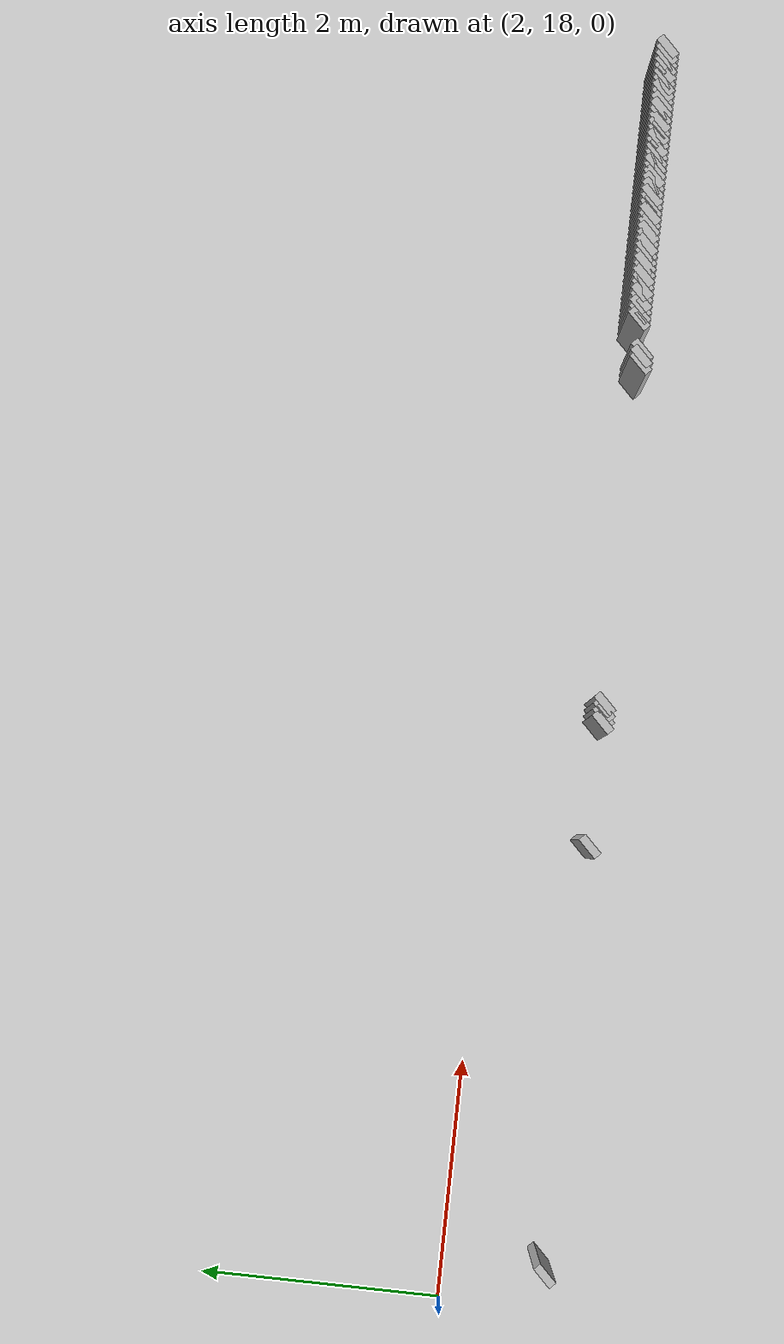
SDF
<sdf version="1.5">
 <world name="default">
  <include><uri>model://ground_plane</uri></include>
  <include><uri>model://sun</uri></include>
  <model name="grey_wall_108">
   <static>1</static>
   <link name="link">
    <pose>10.15 17.25  1.4 0 0 -0.7853981633974128</pose>
    <collision name="collision">
     <geometry><box><size>0.07071067811865325 .2  2.8</size></box></geometry>
    </collision>
    <visual name="visual">
     <cast_shadows>0</cast_shadows>
     <geometry><box><size>0.07071067811865325 .2  2.8</size></box></geometry>
    </visual>
   </link>
  </model>
  <model name="grey_wall_109">
   <static>1</static>
   <link name="link">
    <pose>10.200000000000001 17.25  1.4 0 0 -0.7853981633974128</pose>
    <collision name="collision">
     <geometry><box><size>0.07071067811865325 .2  2.8</size></box></geometry>
    </collision>
    <visual name="visual">
     <cast_shadows>0</cast_shadows>
     <geometry><box><size>0.07071067811865325 .2  2.8</size></box></geometry>
    </visual>
   </link>
  </model>
  <model name="grey_wall_110">
   <static>1</static>
   <link name="link">
    <pose>10.25 17.25  1.4 0 0 -0.7853981633974128</pose>
    <collision name="collision">
     <geometry><box><size>0.07071067811865325 .2  2.8</size></box></geometry>
    </collision>
    <visual name="visual">
     <cast_shadows>0</cast_shadows>
     <geometry><box><size>0.07071067811865325 .2  2.8</size></box></geometry>
    </visual>
   </link>
  </model>
  <model name="grey_wall_111">
   <static>1</static>
   <link name="link">
    <pose>10.3 17.25  1.4 0 0 -0.7853981633974128</pose>
    <collision name="collision">
     <geometry><box><size>0.07071067811865325 .2  2.8</size></box></geometry>
    </collision>
    <visual name="visual">
     <cast_shadows>0</cast_shadows>
     <geometry><box><size>0.07071067811865325 .2  2.8</size></box></geometry>
    </visual>
   </link>
  </model>
  <model name="grey_wall_112">
   <static>1</static>
   <link name="link">
    <pose>10.350000000000001 17.25  1.4 0 0 -0.7853981633974128</pose>
    <collision name="collision">
     <geometry><box><size>0.07071067811865325 .2  2.8</size></box></geometry>
    </collision>
    <visual name="visual">
     <cast_shadows>0</cast_shadows>
     <geometry><box><size>0.07071067811865325 .2  2.8</size></box></geometry>
    </visual>
   </link>
  </model>
  <model name="grey_wall_113">
   <static>1</static>
   <link name="link">
    <pose>10.4 17.25  1.4 0 0 -0.7853981633974128</pose>
    <collision name="collision">
     <geometry><box><size>0.07071067811865325 .2  2.8</size></box></geometry>
    </collision>
    <visual name="visual">
     <cast_shadows>0</cast_shadows>
     <geometry><box><size>0.07071067811865325 .2  2.8</size></box></geometry>
    </visual>
   </link>
  </model>
  <model name="grey_wall_114">
   <static>1</static>
   <link name="link">
    <pose>10.450000000000001 17.25  1.4 0 0 -0.7853981633974128</pose>
    <collision name="collision">
     <geometry><box><size>0.07071067811865325 .2  2.8</size></box></geometry>
    </collision>
    <visual name="visual">
     <cast_shadows>0</cast_shadows>
     <geometry><box><size>0.07071067811865325 .2  2.8</size></box></geometry>
    </visual>
   </link>
  </model>
  <model name="grey_wall_115">
   <static>1</static>
   <link name="link">
    <pose>10.5 17.25  1.4 0 0 -0.7853981633974128</pose>
    <collision name="collision">
     <geometry><box><size>0.07071067811865325 .2  2.8</size></box></geometry>
    </collision>
    <visual name="visual">
     <cast_shadows>0</cast_shadows>
     <geometry><box><size>0.07071067811865325 .2  2.8</size></box></geometry>
    </visual>
   </link>
  </model>
  <model name="grey_wall_116">
   <static>1</static>
   <link name="link">
    <pose>10.55 17.25  1.4 0 0 -0.7853981633974128</pose>
    <collision name="collision">
     <geometry><box><size>0.07071067811865325 .2  2.8</size></box></geometry>
    </collision>
    <visual name="visual">
     <cast_shadows>0</cast_shadows>
     <geometry><box><size>0.07071067811865325 .2  2.8</size></box></geometry>
    </visual>
   </link>
  </model>
  <model name="grey_wall_117">
   <static>1</static>
   <link name="link">
    <pose>10.600000000000001 17.25  1.4 0 0 -0.7853981633974128</pose>
    <collision name="collision">
     <geometry><box><size>0.07071067811865325 .2  2.8</size></box></geometry>
    </collision>
    <visual name="visual">
     <cast_shadows>0</cast_shadows>
     <geometry><box><size>0.07071067811865325 .2  2.8</size></box></geometry>
    </visual>
   </link>
  </model>
  <model name="grey_wall_118">
   <static>1</static>
   <link name="link">
    <pose>10.65 17.25  1.4 0 0 -0.7853981633974128</pose>
    <collision name="collision">
     <geometry><box><size>0.07071067811865325 .2  2.8</size></box></geometry>
    </collision>
    <visual name="visual">
     <cast_shadows>0</cast_shadows>
     <geometry><box><size>0.07071067811865325 .2  2.8</size></box></geometry>
    </visual>
   </link>
  </model>
  <model name="grey_wall_119">
   <static>1</static>
   <link name="link">
    <pose>10.700000000000001 17.25  1.4 0 0 -0.7853981633974128</pose>
    <collision name="collision">
     <geometry><box><size>0.07071067811865325 .2  2.8</size></box></geometry>
    </collision>
    <visual name="visual">
     <cast_shadows>0</cast_shadows>
     <geometry><box><size>0.07071067811865325 .2  2.8</size></box></geometry>
    </visual>
   </link>
  </model>
  <model name="grey_wall_120">
   <static>1</static>
   <link name="link">
    <pose>10.75 17.25  1.4 0 0 -0.7853981633974128</pose>
    <collision name="collision">
     <geometry><box><size>0.07071067811865325 .2  2.8</size></box></geometry>
    </collision>
    <visual name="visual">
     <cast_shadows>0</cast_shadows>
     <geometry><box><size>0.07071067811865325 .2  2.8</size></box></geometry>
    </visual>
   </link>
  </model>
  <model name="grey_wall_121">
   <static>1</static>
   <link name="link">
    <pose>10.8 17.25  1.4 0 0 -0.7853981633974128</pose>
    <collision name="collision">
     <geometry><box><size>0.07071067811865325 .2  2.8</size></box></geometry>
    </collision>
    <visual name="visual">
     <cast_shadows>0</cast_shadows>
     <geometry><box><size>0.07071067811865325 .2  2.8</size></box></geometry>
    </visual>
   </link>
  </model>
  <model name="grey_wall_122">
   <static>1</static>
   <link name="link">
    <pose>10.850000000000001 17.25  1.4 0 0 -0.7853981633974128</pose>
    <collision name="collision">
     <geometry><box><size>0.07071067811865325 .2  2.8</size></box></geometry>
    </collision>
    <visual name="visual">
     <cast_shadows>0</cast_shadows>
     <geometry><box><size>0.07071067811865325 .2  2.8</size></box></geometry>
    </visual>
   </link>
  </model>
  <model name="grey_wall_123">
   <static>1</static>
   <link name="link">
    <pose>10.9 17.25  1.4 0 0 -0.7853981633974128</pose>
    <collision name="collision">
     <geometry><box><size>0.07071067811865325 .2  2.8</size></box></geometry>
    </collision>
    <visual name="visual">
     <cast_shadows>0</cast_shadows>
     <geometry><box><size>0.07071067811865325 .2  2.8</size></box></geometry>
    </visual>
   </link>
  </model>
  <model name="grey_wall_124">
   <static>1</static>
   <link name="link">
    <pose>10.950000000000001 17.25  1.4 0 0 -0.7853981633974128</pose>
    <collision name="collision">
     <geometry><box><size>0.07071067811865325 .2  2.8</size></box></geometry>
    </collision>
    <visual name="visual">
     <cast_shadows>0</cast_shadows>
     <geometry><box><size>0.07071067811865325 .2  2.8</size></box></geometry>
    </visual>
   </link>
  </model>
  <model name="grey_wall_125">
   <static>1</static>
   <link name="link">
    <pose>11.0 17.25  1.4 0 0 -0.7853981633974128</pose>
    <collision name="collision">
     <geometry><box><size>0.07071067811865325 .2  2.8</size></box></geometry>
    </collision>
    <visual name="visual">
     <cast_shadows>0</cast_shadows>
     <geometry><box><size>0.07071067811865325 .2  2.8</size></box></geometry>
    </visual>
   </link>
  </model>
  <model name="grey_wall_126">
   <static>1</static>
   <link name="link">
    <pose>11.05 17.25  1.4 0 0 -0.7853981633974128</pose>
    <collision name="collision">
     <geometry><box><size>0.07071067811865325 .2  2.8</size></box></geometry>
    </collision>
    <visual name="visual">
     <cast_shadows>0</cast_shadows>
     <geometry><box><size>0.07071067811865325 .2  2.8</size></box></geometry>
    </visual>
   </link>
  </model>
  <model name="grey_wall_127">
   <static>1</static>
   <link name="link">
    <pose>11.100000000000001 17.25  1.4 0 0 -0.7853981633974128</pose>
    <collision name="collision">
     <geometry><box><size>0.07071067811865325 .2  2.8</size></box></geometry>
    </collision>
    <visual name="visual">
     <cast_shadows>0</cast_shadows>
     <geometry><box><size>0.07071067811865325 .2  2.8</size></box></geometry>
    </visual>
   </link>
  </model>
  <model name="grey_wall_128">
   <static>1</static>
   <link name="link">
    <pose>11.15 17.25  1.4 0 0 -0.7853981633974128</pose>
    <collision name="collision">
     <geometry><box><size>0.07071067811865325 .2  2.8</size></box></geometry>
    </collision>
    <visual name="visual">
     <cast_shadows>0</cast_shadows>
     <geometry><box><size>0.07071067811865325 .2  2.8</size></box></geometry>
    </visual>
   </link>
  </model>
  <model name="grey_wall_129">
   <static>1</static>
   <link name="link">
    <pose>11.200000000000001 17.25  1.4 0 0 -0.7853981633974128</pose>
    <collision name="collision">
     <geometry><box><size>0.07071067811865325 .2  2.8</size></box></geometry>
    </collision>
    <visual name="visual">
     <cast_shadows>0</cast_shadows>
     <geometry><box><size>0.07071067811865325 .2  2.8</size></box></geometry>
    </visual>
   </link>
  </model>
  <model name="grey_wall_130">
   <static>1</static>
   <link name="link">
    <pose>11.25 17.25  1.4 0 0 -0.7853981633974128</pose>
    <collision name="collision">
     <geometry><box><size>0.07071067811865325 .2  2.8</size></box></geometry>
    </collision>
    <visual name="visual">
     <cast_shadows>0</cast_shadows>
     <geometry><box><size>0.07071067811865325 .2  2.8</size></box></geometry>
    </visual>
   </link>
  </model>
  <model name="grey_wall_131">
   <static>1</static>
   <link name="link">
    <pose>11.3 17.25  1.4 0 0 -0.7853981633974128</pose>
    <collision name="collision">
     <geometry><box><size>0.07071067811865325 .2  2.8</size></box></geometry>
    </collision>
    <visual name="visual">
     <cast_shadows>0</cast_shadows>
     <geometry><box><size>0.07071067811865325 .2  2.8</size></box></geometry>
    </visual>
   </link>
  </model>
  <model name="grey_wall_132">
   <static>1</static>
   <link name="link">
    <pose>11.350000000000001 17.25  1.4 0 0 -0.7853981633974128</pose>
    <collision name="collision">
     <geometry><box><size>0.07071067811865325 .2  2.8</size></box></geometry>
    </collision>
    <visual name="visual">
     <cast_shadows>0</cast_shadows>
     <geometry><box><size>0.07071067811865325 .2  2.8</size></box></geometry>
    </visual>
   </link>
  </model>
  <model name="grey_wall_133">
   <static>1</static>
   <link name="link">
    <pose>11.4 17.25  1.4 0 0 -0.7853981633974128</pose>
    <collision name="collision">
     <geometry><box><size>0.07071067811865325 .2  2.8</size></box></geometry>
    </collision>
    <visual name="visual">
     <cast_shadows>0</cast_shadows>
     <geometry><box><size>0.07071067811865325 .2  2.8</size></box></geometry>
    </visual>
   </link>
  </model>
  <model name="grey_wall_134">
   <static>1</static>
   <link name="link">
    <pose>11.450000000000001 17.25  1.4 0 0 -0.7853981633974128</pose>
    <collision name="collision">
     <geometry><box><size>0.07071067811865325 .2  2.8</size></box></geometry>
    </collision>
    <visual name="visual">
     <cast_shadows>0</cast_shadows>
     <geometry><box><size>0.07071067811865325 .2  2.8</size></box></geometry>
    </visual>
   </link>
  </model>
  <model name="grey_wall_135">
   <static>1</static>
   <link name="link">
    <pose>11.5 17.25  1.4 0 0 -0.7853981633974128</pose>
    <collision name="collision">
     <geometry><box><size>0.07071067811865325 .2  2.8</size></box></geometry>
    </collision>
    <visual name="visual">
     <cast_shadows>0</cast_shadows>
     <geometry><box><size>0.07071067811865325 .2  2.8</size></box></geometry>
    </visual>
   </link>
  </model>
  <model name="grey_wall_136">
   <static>1</static>
   <link name="link">
    <pose>11.55 17.25  1.4 0 0 -0.7853981633974128</pose>
    <collision name="collision">
     <geometry><box><size>0.07071067811865325 .2  2.8</size></box></geometry>
    </collision>
    <visual name="visual">
     <cast_shadows>0</cast_shadows>
     <geometry><box><size>0.07071067811865325 .2  2.8</size></box></geometry>
    </visual>
   </link>
  </model>
  <model name="grey_wall_137">
   <static>1</static>
   <link name="link">
    <pose>11.600000000000001 17.25  1.4 0 0 -0.7853981633974128</pose>
    <collision name="collision">
     <geometry><box><size>0.07071067811865325 .2  2.8</size></box></geometry>
    </collision>
    <visual name="visual">
     <cast_shadows>0</cast_shadows>
     <geometry><box><size>0.07071067811865325 .2  2.8</size></box></geometry>
    </visual>
   </link>
  </model>
  <model name="grey_wall_138">
   <static>1</static>
   <link name="link">
    <pose>11.65 17.25  1.4 0 0 -0.7853981633974128</pose>
    <collision name="collision">
     <geometry><box><size>0.07071067811865325 .2  2.8</size></box></geometry>
    </collision>
    <visual name="visual">
     <cast_shadows>0</cast_shadows>
     <geometry><box><size>0.07071067811865325 .2  2.8</size></box></geometry>
    </visual>
   </link>
  </model>
  <model name="grey_wall_139">
   <static>1</static>
   <link name="link">
    <pose>11.700000000000001 17.25  1.4 0 0 -0.7853981633974128</pose>
    <collision name="collision">
     <geometry><box><size>0.07071067811865325 .2  2.8</size></box></geometry>
    </collision>
    <visual name="visual">
     <cast_shadows>0</cast_shadows>
     <geometry><box><size>0.07071067811865325 .2  2.8</size></box></geometry>
    </visual>
   </link>
  </model>
  <model name="grey_wall_140">
   <static>1</static>
   <link name="link">
    <pose>11.75 17.25  1.4 0 0 -0.7853981633974128</pose>
    <collision name="collision">
     <geometry><box><size>0.07071067811865325 .2  2.8</size></box></geometry>
    </collision>
    <visual name="visual">
     <cast_shadows>0</cast_shadows>
     <geometry><box><size>0.07071067811865325 .2  2.8</size></box></geometry>
    </visual>
   </link>
  </model>
  <model name="grey_wall_141">
   <static>1</static>
   <link name="link">
    <pose>11.8 17.25  1.4 0 0 -0.7853981633974128</pose>
    <collision name="collision">
     <geometry><box><size>0.07071067811865325 .2  2.8</size></box></geometry>
    </collision>
    <visual name="visual">
     <cast_shadows>0</cast_shadows>
     <geometry><box><size>0.07071067811865325 .2  2.8</size></box></geometry>
    </visual>
   </link>
  </model>
  <model name="grey_wall_142">
   <static>1</static>
   <link name="link">
    <pose>11.850000000000001 17.25  1.4 0 0 -0.7853981633974128</pose>
    <collision name="collision">
     <geometry><box><size>0.07071067811865325 .2  2.8</size></box></geometry>
    </collision>
    <visual name="visual">
     <cast_shadows>0</cast_shadows>
     <geometry><box><size>0.07071067811865325 .2  2.8</size></box></geometry>
    </visual>
   </link>
  </model>
  <model name="grey_wall_143">
   <static>1</static>
   <link name="link">
    <pose>11.9 17.25  1.4 0 0 -0.7853981633974128</pose>
    <collision name="collision">
     <geometry><box><size>0.07071067811865325 .2  2.8</size></box></geometry>
    </collision>
    <visual name="visual">
     <cast_shadows>0</cast_shadows>
     <geometry><box><size>0.07071067811865325 .2  2.8</size></box></geometry>
    </visual>
   </link>
  </model>
  <model name="grey_wall_144">
   <static>1</static>
   <link name="link">
    <pose>11.950000000000001 17.25  1.4 0 0 -0.7853981633974128</pose>
    <collision name="collision">
     <geometry><box><size>0.07071067811865325 .2  2.8</size></box></geometry>
    </collision>
    <visual name="visual">
     <cast_shadows>0</cast_shadows>
     <geometry><box><size>0.07071067811865325 .2  2.8</size></box></geometry>
    </visual>
   </link>
  </model>
  <model name="grey_wall_145">
   <static>1</static>
   <link name="link">
    <pose>12.0 17.25  1.4 0 0 -0.7853981633974128</pose>
    <collision name="collision">
     <geometry><box><size>0.07071067811865325 .2  2.8</size></box></geometry>
    </collision>
    <visual name="visual">
     <cast_shadows>0</cast_shadows>
     <geometry><box><size>0.07071067811865325 .2  2.8</size></box></geometry>
    </visual>
   </link>
  </model>
  <model name="grey_wall_146">
   <static>1</static>
   <link name="link">
    <pose>12.05 17.25  1.4 0 0 -0.7853981633974128</pose>
    <collision name="collision">
     <geometry><box><size>0.07071067811865325 .2  2.8</size></box></geometry>
    </collision>
    <visual name="visual">
     <cast_shadows>0</cast_shadows>
     <geometry><box><size>0.07071067811865325 .2  2.8</size></box></geometry>
    </visual>
   </link>
  </model>
  <model name="grey_wall_147">
   <static>1</static>
   <link name="link">
    <pose>12.100000000000001 17.25  1.4 0 0 -0.7853981633974128</pose>
    <collision name="collision">
     <geometry><box><size>0.07071067811865325 .2  2.8</size></box></geometry>
    </collision>
    <visual name="visual">
     <cast_shadows>0</cast_shadows>
     <geometry><box><size>0.07071067811865325 .2  2.8</size></box></geometry>
    </visual>
   </link>
  </model>
  <model name="grey_wall_148">
   <static>1</static>
   <link name="link">
    <pose>12.15 17.25  1.4 0 0 -0.7853981633974128</pose>
    <collision name="collision">
     <geometry><box><size>0.07071067811865325 .2  2.8</size></box></geometry>
    </collision>
    <visual name="visual">
     <cast_shadows>0</cast_shadows>
     <geometry><box><size>0.07071067811865325 .2  2.8</size></box></geometry>
    </visual>
   </link>
  </model>
  <model name="grey_wall_149">
   <static>1</static>
   <link name="link">
    <pose>12.200000000000001 17.25  1.4 0 0 -0.7853981633974128</pose>
    <collision name="collision">
     <geometry><box><size>0.07071067811865325 .2  2.8</size></box></geometry>
    </collision>
    <visual name="visual">
     <cast_shadows>0</cast_shadows>
     <geometry><box><size>0.07071067811865325 .2  2.8</size></box></geometry>
    </visual>
   </link>
  </model>
  <model name="grey_wall_150">
   <static>1</static>
   <link name="link">
    <pose>12.25 17.25  1.4 0 0 -0.7853981633974128</pose>
    <collision name="collision">
     <geometry><box><size>0.07071067811865325 .2  2.8</size></box></geometry>
    </collision>
    <visual name="visual">
     <cast_shadows>0</cast_shadows>
     <geometry><box><size>0.07071067811865325 .2  2.8</size></box></geometry>
    </visual>
   </link>
  </model>
  <model name="grey_wall_151">
   <static>1</static>
   <link name="link">
    <pose>12.3 17.25  1.4 0 0 -0.7853981633974128</pose>
    <collision name="collision">
     <geometry><box><size>0.07071067811865325 .2  2.8</size></box></geometry>
    </collision>
    <visual name="visual">
     <cast_shadows>0</cast_shadows>
     <geometry><box><size>0.07071067811865325 .2  2.8</size></box></geometry>
    </visual>
   </link>
  </model>
  <model name="grey_wall_152">
   <static>1</static>
   <link name="link">
    <pose>12.350000000000001 17.25  1.4 0 0 -0.7853981633974128</pose>
    <collision name="collision">
     <geometry><box><size>0.07071067811865325 .2  2.8</size></box></geometry>
    </collision>
    <visual name="visual">
     <cast_shadows>0</cast_shadows>
     <geometry><box><size>0.07071067811865325 .2  2.8</size></box></geometry>
    </visual>
   </link>
  </model>
  <model name="grey_wall_153">
   <static>1</static>
   <link name="link">
    <pose>2.45 17.2  1.4 0 0 -0.7853981633974216</pose>
    <collision name="collision">
     <geometry><box><size>0.07071067811865261 .2  2.8</size></box></geometry>
    </collision>
    <visual name="visual">
     <cast_shadows>0</cast_shadows>
     <geometry><box><size>0.07071067811865261 .2  2.8</size></box></geometry>
    </visual>
   </link>
  </model>
  <model name="grey_wall_154">
   <static>1</static>
   <link name="link">
    <pose>5.9 17.2  1.4 0 0 -0.7853981633974128</pose>
    <collision name="collision">
     <geometry><box><size>0.07071067811865325 .2  2.8</size></box></geometry>
    </collision>
    <visual name="visual">
     <cast_shadows>0</cast_shadows>
     <geometry><box><size>0.07071067811865325 .2  2.8</size></box></geometry>
    </visual>
   </link>
  </model>
  <model name="grey_wall_155">
   <static>1</static>
   <link name="link">
    <pose>6.9 17.2  1.4 0 0 -0.7853981633974128</pose>
    <collision name="collision">
     <geometry><box><size>0.07071067811865325 .2  2.8</size></box></geometry>
    </collision>
    <visual name="visual">
     <cast_shadows>0</cast_shadows>
     <geometry><box><size>0.07071067811865325 .2  2.8</size></box></geometry>
    </visual>
   </link>
  </model>
  <model name="grey_wall_156">
   <static>1</static>
   <link name="link">
    <pose>6.95 17.2  1.4 0 0 -0.7853981633974128</pose>
    <collision name="collision">
     <geometry><box><size>0.07071067811865325 .2  2.8</size></box></geometry>
    </collision>
    <visual name="visual">
     <cast_shadows>0</cast_shadows>
     <geometry><box><size>0.07071067811865325 .2  2.8</size></box></geometry>
    </visual>
   </link>
  </model>
  <model name="grey_wall_157">
   <static>1</static>
   <link name="link">
    <pose>7.0 17.2  1.4 0 0 -0.7853981633974128</pose>
    <collision name="collision">
     <geometry><box><size>0.07071067811865325 .2  2.8</size></box></geometry>
    </collision>
    <visual name="visual">
     <cast_shadows>0</cast_shadows>
     <geometry><box><size>0.07071067811865325 .2  2.8</size></box></geometry>
    </visual>
   </link>
  </model>
  <model name="grey_wall_158">
   <static>1</static>
   <link name="link">
    <pose>7.050000000000001 17.2  1.4 0 0 -0.7853981633974128</pose>
    <collision name="collision">
     <geometry><box><size>0.07071067811865325 .2  2.8</size></box></geometry>
    </collision>
    <visual name="visual">
     <cast_shadows>0</cast_shadows>
     <geometry><box><size>0.07071067811865325 .2  2.8</size></box></geometry>
    </visual>
   </link>
  </model>
  <model name="grey_wall_159">
   <static>1</static>
   <link name="link">
    <pose>9.8 17.2  1.4 0 0 -0.7853981633974128</pose>
    <collision name="collision">
     <geometry><box><size>0.07071067811865325 .2  2.8</size></box></geometry>
    </collision>
    <visual name="visual">
     <cast_shadows>0</cast_shadows>
     <geometry><box><size>0.07071067811865325 .2  2.8</size></box></geometry>
    </visual>
   </link>
  </model>
  <model name="grey_wall_160">
   <static>1</static>
   <link name="link">
    <pose>9.850000000000001 17.2  1.4 0 0 -0.7853981633974128</pose>
    <collision name="collision">
     <geometry><box><size>0.07071067811865325 .2  2.8</size></box></geometry>
    </collision>
    <visual name="visual">
     <cast_shadows>0</cast_shadows>
     <geometry><box><size>0.07071067811865325 .2  2.8</size></box></geometry>
    </visual>
   </link>
  </model>
  <model name="grey_wall_161">
   <static>1</static>
   <link name="link">
    <pose>9.9 17.2  1.4 0 0 -0.7853981633974128</pose>
    <collision name="collision">
     <geometry><box><size>0.07071067811865325 .2  2.8</size></box></geometry>
    </collision>
    <visual name="visual">
     <cast_shadows>0</cast_shadows>
     <geometry><box><size>0.07071067811865325 .2  2.8</size></box></geometry>
    </visual>
   </link>
  </model>
 </world>
</sdf>
